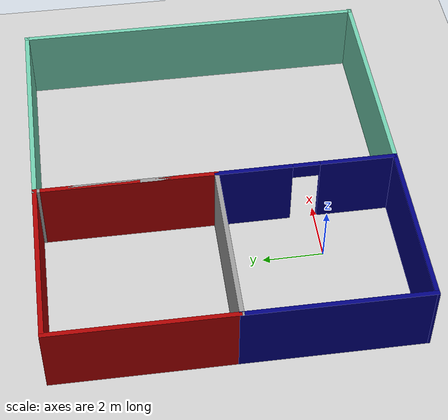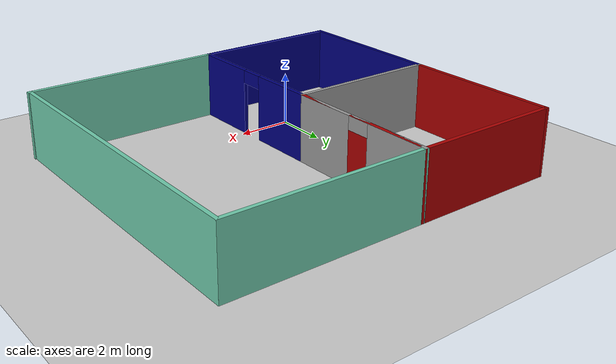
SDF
<?xml version="1.0" ?>
<sdf version="1.4">
  <world name="default">
    <include>
      <uri>model://ground_plane</uri>
    </include>
    <include>
      <uri>model://sun</uri>
    </include>
    <include>
      <uri>model://three_room</uri>
    </include>
    <updateRate>0.0</updateRate>
  </world>
</sdf>

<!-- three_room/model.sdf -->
<sdf version='1.6'>
  <model name='three_room'>
    <pose frame=''>2.65413 3.2858 0 0 -0 0</pose>
    <link name='Wall_11'>
      <collision name='Wall_11_Collision'>
        <geometry>
          <box>
            <size>6 0.15 2.5</size>
          </box>
        </geometry>
        <pose frame=''>0 0 1.25 0 -0 0</pose>
      </collision>
      <visual name='Wall_11_Visual'>
        <pose frame=''>0 0 1.25 0 -0 0</pose>
        <geometry>
          <box>
            <size>6 0.15 2.5</size>
          </box>
        </geometry>
        <material>
          <script>
            <uri>file://media/materials/scripts/gazebo.material</uri>
            <name>Gazebo/Grey</name>
          </script>
          <ambient>0.666667 0 0 1</ambient>
        </material>
        <meta>
          <layer>0</layer>
        </meta>
      </visual>
      <pose frame=''>-6.48941 2.94006 0 0 -0 1.5708</pose>
    </link>
    <link name='Wall_15'>
      <collision name='Wall_15_Collision'>
        <geometry>
          <box>
            <size>5.75 0.15 2.5</size>
          </box>
        </geometry>
        <pose frame=''>0 0 1.25 0 -0 0</pose>
      </collision>
      <visual name='Wall_15_Visual'>
        <pose frame=''>0 0 1.25 0 -0 0</pose>
        <geometry>
          <box>
            <size>5.75 0.15 2.5</size>
          </box>
        </geometry>
        <material>
          <script>
            <uri>file://media/materials/scripts/gazebo.material</uri>
            <name>Gazebo/Grey</name>
          </script>
          <ambient>0.666667 0 0 1</ambient>
        </material>
        <meta>
          <layer>0</layer>
        </meta>
      </visual>
      <pose frame=''>-0.889413 2.81506 0 0 -0 1.5708</pose>
    </link>
    <link name='Wall_2'>
      <collision name='Wall_2_Collision'>
        <geometry>
          <box>
            <size>6 0.15 2.5</size>
          </box>
        </geometry>
        <pose frame=''>0 0 1.25 0 -0 0</pose>
      </collision>
      <visual name='Wall_2_Visual'>
        <pose frame=''>0 0 1.25 0 -0 0</pose>
        <geometry>
          <box>
            <size>6 0.15 2.5</size>
          </box>
        </geometry>
        <material>
          <script>
            <uri>file://media/materials/scripts/gazebo.material</uri>
            <name>Gazebo/Grey</name>
          </script>
          <ambient>0 0 0.498039 1</ambient>
        </material>
        <meta>
          <layer>0</layer>
        </meta>
      </visual>
      <pose frame=''>-6.48941 -2.90994 0 0 -0 1.5708</pose>
    </link>
    <link name='Wall_47'>
      <collision name='Wall_47_Collision'>
        <geometry>
          <box>
            <size>5.75 0.15 2.5</size>
          </box>
        </geometry>
        <pose frame=''>0 0 1.25 0 -0 0</pose>
      </collision>
      <visual name='Wall_47_Visual'>
        <pose frame=''>0 0 1.25 0 -0 0</pose>
        <geometry>
          <box>
            <size>5.75 0.15 2.5</size>
          </box>
        </geometry>
        <material>
          <script>
            <uri>file://media/materials/scripts/gazebo.material</uri>
            <name>Gazebo/Grey</name>
          </script>
          <ambient>0.666667 0 0 1</ambient>
        </material>
        <meta>
          <layer>0</layer>
        </meta>
      </visual>
      <pose frame=''>-3.68927 5.86513 0 0 -0 2.5e-05</pose>
    </link>
    <link name='Wall_48'>
      <pose frame=''>-0.889272 2.94013 0 0 0 -1.57084</pose>
      <visual name='Wall_48_Visual_0'>
        <pose frame=''>-1.72578 0 1.25 0 -0 0</pose>
        <geometry>
          <box>
            <size>2.54845 0.15 2.5</size>
          </box>
        </geometry>
        <material>
          <script>
            <uri>file://media/materials/scripts/gazebo.material</uri>
            <name>Gazebo/Grey</name>
          </script>
          <ambient>1 1 1 1</ambient>
        </material>
        <meta>
          <layer>0</layer>
        </meta>
      </visual>
      <collision name='Wall_48_Collision_0'>
        <geometry>
          <box>
            <size>2.54845 0.15 2.5</size>
          </box>
        </geometry>
        <pose frame=''>-1.72578 0 1.25 0 -0 0</pose>
      </collision>
      <visual name='Wall_48_Visual_1'>
        <pose frame=''>1.72422 0 1.25 0 -0 0</pose>
        <geometry>
          <box>
            <size>2.55155 0.15 2.5</size>
          </box>
        </geometry>
        <material>
          <script>
            <uri>file://media/materials/scripts/gazebo.material</uri>
            <name>Gazebo/Grey</name>
          </script>
          <ambient>1 1 1 1</ambient>
        </material>
        <meta>
          <layer>0</layer>
        </meta>
      </visual>
      <collision name='Wall_48_Collision_1'>
        <geometry>
          <box>
            <size>2.55155 0.15 2.5</size>
          </box>
        </geometry>
        <pose frame=''>1.72422 0 1.25 0 -0 0</pose>
      </collision>
      <visual name='Wall_48_Visual_2'>
        <pose frame=''>-0.001552 0 2.25 0 -0 0</pose>
        <geometry>
          <box>
            <size>0.9 0.15 0.5</size>
          </box>
        </geometry>
        <material>
          <script>
            <uri>file://media/materials/scripts/gazebo.material</uri>
            <name>Gazebo/Grey</name>
          </script>
          <ambient>1 1 1 1</ambient>
        </material>
        <meta>
          <layer>0</layer>
        </meta>
      </visual>
      <collision name='Wall_48_Collision_2'>
        <geometry>
          <box>
            <size>0.9 0.15 0.5</size>
          </box>
        </geometry>
        <pose frame=''>-0.001552 0 2.25 0 -0 0</pose>
      </collision>
    </link>
    <link name='Wall_5'>
      <collision name='Wall_5_Collision'>
        <geometry>
          <box>
            <size>5.75 0.15 2.5</size>
          </box>
        </geometry>
        <pose frame=''>0 0 1.25 0 -0 0</pose>
      </collision>
      <visual name='Wall_5_Visual'>
        <pose frame=''>0 0 1.25 0 -0 0</pose>
        <geometry>
          <box>
            <size>5.75 0.15 2.5</size>
          </box>
        </geometry>
        <material>
          <script>
            <uri>file://media/materials/scripts/gazebo.material</uri>
            <name>Gazebo/Grey</name>
          </script>
          <ambient>1 1 1 1</ambient>
        </material>
        <meta>
          <layer>0</layer>
        </meta>
      </visual>
      <pose frame=''>-3.68941 0.015056 0 0 -0 0</pose>
    </link>
    <link name='Wall_53'>
      <collision name='Wall_53_Collision'>
        <geometry>
          <box>
            <size>7.5 0.15 2.5</size>
          </box>
        </geometry>
        <pose frame=''>0 0 1.25 0 -0 0</pose>
      </collision>
      <visual name='Wall_53_Visual'>
        <pose frame=''>0 0 1.25 0 -0 0</pose>
        <geometry>
          <box>
            <size>7.5 0.15 2.5</size>
          </box>
        </geometry>
        <material>
          <script>
            <uri>file://media/materials/scripts/gazebo.material</uri>
            <name>Gazebo/Grey</name>
          </script>
          <ambient>0.435294 0.796078 0.67451 1</ambient>
        </material>
        <meta>
          <layer>0</layer>
        </meta>
      </visual>
      <pose frame=''>2.78587 5.8652 0 0 -0 0</pose>
    </link>
    <link name='Wall_55'>
      <collision name='Wall_55_Collision'>
        <geometry>
          <box>
            <size>11.85 0.15 2.5</size>
          </box>
        </geometry>
        <pose frame=''>0 0 1.25 0 -0 0</pose>
      </collision>
      <visual name='Wall_55_Visual'>
        <pose frame=''>0 0 1.25 0 -0 0</pose>
        <geometry>
          <box>
            <size>11.85 0.15 2.5</size>
          </box>
        </geometry>
        <material>
          <script>
            <uri>file://media/materials/scripts/gazebo.material</uri>
            <name>Gazebo/Grey</name>
          </script>
          <ambient>0.435294 0.796078 0.67451 1</ambient>
        </material>
        <meta>
          <layer>0</layer>
        </meta>
      </visual>
      <pose frame=''>6.46087 0.015198 0 0 0 -1.5708</pose>
    </link>
    <link name='Wall_57'>
      <collision name='Wall_57_Collision'>
        <geometry>
          <box>
            <size>7.5 0.15 2.5</size>
          </box>
        </geometry>
        <pose frame=''>0 0 1.25 0 -0 0</pose>
      </collision>
      <visual name='Wall_57_Visual'>
        <pose frame=''>0 0 1.25 0 -0 0</pose>
        <geometry>
          <box>
            <size>7.5 0.15 2.5</size>
          </box>
        </geometry>
        <material>
          <script>
            <uri>file://media/materials/scripts/gazebo.material</uri>
            <name>Gazebo/Grey</name>
          </script>
          <ambient>0.435294 0.796078 0.67451 1</ambient>
        </material>
        <meta>
          <layer>0</layer>
        </meta>
      </visual>
      <pose frame=''>2.81487 -5.8648 0 0 -0 0</pose>
    </link>
    <link name='Wall_6'>
      <pose frame=''>-0.874772 -2.92487 0 0 0 -1.56582</pose>
      <visual name='Wall_6_Visual_0'>
        <pose frame=''>-1.73387 0 1.25 0 -0 0</pose>
        <geometry>
          <box>
            <size>2.56174 0.15 2.5</size>
          </box>
        </geometry>
        <material>
          <script>
            <uri>file://media/materials/scripts/gazebo.material</uri>
            <name>Gazebo/Grey</name>
          </script>
          <ambient>0 0 0.498039 1</ambient>
        </material>
        <meta>
          <layer>0</layer>
        </meta>
      </visual>
      <collision name='Wall_6_Collision_0'>
        <geometry>
          <box>
            <size>2.56174 0.15 2.5</size>
          </box>
        </geometry>
        <pose frame=''>-1.73387 0 1.25 0 -0 0</pose>
      </collision>
      <visual name='Wall_6_Visual_1'>
        <pose frame=''>1.73087 0 1.25 0 -0 0</pose>
        <geometry>
          <box>
            <size>2.56773 0.15 2.5</size>
          </box>
        </geometry>
        <material>
          <script>
            <uri>file://media/materials/scripts/gazebo.material</uri>
            <name>Gazebo/Grey</name>
          </script>
          <ambient>0 0 0.498039 1</ambient>
        </material>
        <meta>
          <layer>0</layer>
        </meta>
      </visual>
      <collision name='Wall_6_Collision_1'>
        <geometry>
          <box>
            <size>2.56773 0.15 2.5</size>
          </box>
        </geometry>
        <pose frame=''>1.73087 0 1.25 0 -0 0</pose>
      </collision>
      <visual name='Wall_6_Visual_2'>
        <pose frame=''>-0.002997 0 2.25 0 -0 0</pose>
        <geometry>
          <box>
            <size>0.9 0.15 0.5</size>
          </box>
        </geometry>
        <material>
          <script>
            <uri>file://media/materials/scripts/gazebo.material</uri>
            <name>Gazebo/Grey</name>
          </script>
          <ambient>0 0 0.498039 1</ambient>
        </material>
        <meta>
          <layer>0</layer>
        </meta>
      </visual>
      <collision name='Wall_6_Collision_2'>
        <geometry>
          <box>
            <size>0.9 0.15 0.5</size>
          </box>
        </geometry>
        <pose frame=''>-0.002997 0 2.25 0 -0 0</pose>
      </collision>
    </link>
    <link name='Wall_7'>
      <collision name='Wall_7_Collision'>
        <geometry>
          <box>
            <size>5.77948 0.15 2.5</size>
          </box>
        </geometry>
        <pose frame=''>0 0 1.25 0 -0 0</pose>
      </collision>
      <visual name='Wall_7_Visual'>
        <pose frame=''>0 0 1.25 0 -0 0</pose>
        <geometry>
          <box>
            <size>5.77948 0.15 2.5</size>
          </box>
        </geometry>
        <material>
          <script>
            <uri>file://media/materials/scripts/gazebo.material</uri>
            <name>Gazebo/Grey</name>
          </script>
          <ambient>0 0 0.498039 1</ambient>
        </material>
        <meta>
          <layer>0</layer>
        </meta>
      </visual>
      <pose frame=''>-3.67477 -5.84987 0 0 -0 3.13629</pose>
    </link>
    <static>1</static>
  </model>
</sdf>
